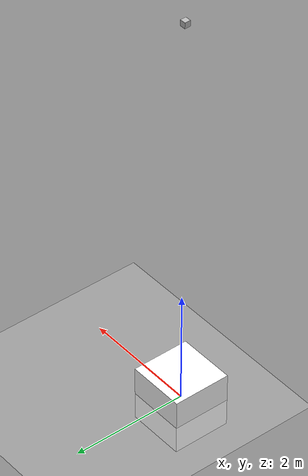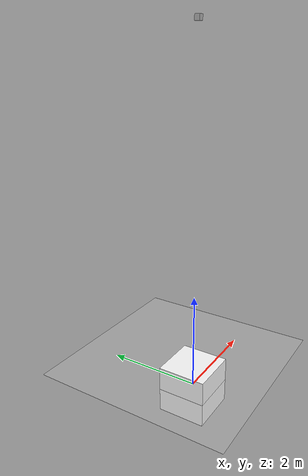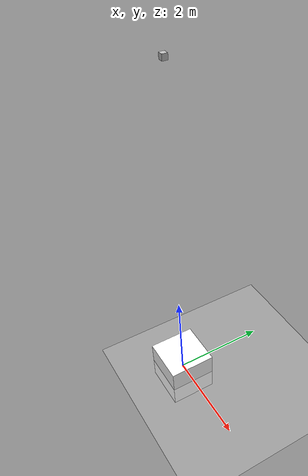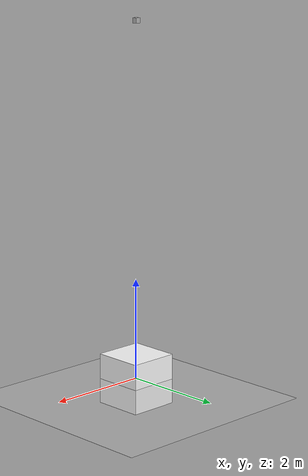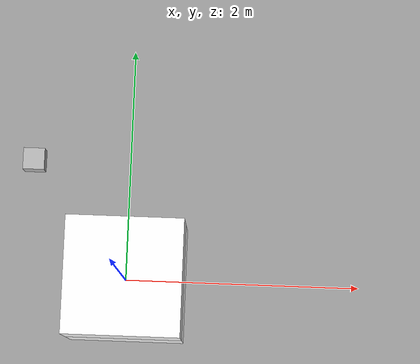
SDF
<?xml version="1.0" ?>
<sdf version='1.6'>
  <world name='hanabi'>
      <include>
        <uri>model://sun</uri>
      </include>
      <include>
        <uri>model://ground_plane</uri>
      </include>
      <include>
        <uri>model://aruco_visual_marker_0</uri>
        <name>AR_tag</name>
	<pose>0 0 0 0 0 0</pose>
      </include>

      <include>
        <uri>model://camera</uri>
        <name>drone_camera</name>
        <pose>0 0 7 0 0 0</pose>
      </include>
  </world>
</sdf>

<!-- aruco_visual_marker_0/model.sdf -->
<sdf version='1.5'>
  <model name='aruco_visual_marker_0'>

    <link name='marker'>
      <pose frame=''>0 0 0 0 0 0</pose>
      <visual name='visual'>
        <geometry>
          <box>
            <size>1 1 1</size>
          </box>
        </geometry>
        <material>
          <script>
            <uri>model://aruco_visual_marker_0/materials/scripts</uri>
            <uri>model://aruco_visual_marker_0/materials/textures</uri>
            <name>ArucoVisualMarker0/Marker</name>
          </script>
          <ambient>1 1 1 1</ambient>
          <diffuse>1 1 1 1</diffuse>
          <specular>0 0 0 1</specular>
          <emissive>1 1 1 0</emissive>
          <shader type='vertex'>
            <normal_map>__default__</normal_map>
          </shader>
        </material>
        <pose frame=''>0 0 0 0 -0 0</pose>
        <cast_shadows>1</cast_shadows>
        <transparency>0</transparency>
      </visual>
      <collision name='collision'>
        <laser_retro>0</laser_retro>
        <max_contacts>10</max_contacts>
        <pose frame=''>0 0 0 0 -0 0</pose>
        <geometry>
          <box>
            <size>1 1 1</size>
          </box>
        </geometry>
      </collision>
    </link>

    <static>1</static>
    <allow_auto_disable>1</allow_auto_disable>

  </model>
</sdf>

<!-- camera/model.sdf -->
<sdf version="1.5">
  <model name="camera">
    <pose>0 0 0.05 0 0 0</pose>
    <link name="link">
      <inertial>
        <mass>0.1</mass>
        <inertia>
          <ixx>0.000166667</ixx>
          <iyy>0.000166667</iyy>
          <izz>0.000166667</izz>
        </inertia>
      </inertial>
      <collision name="collision">
        <geometry>
          <box>
            <size>0.1 0.1 0.1</size>
          </box>
        </geometry>
      </collision>
      <visual name="visual">
        <geometry>
          <box>
            <size>0.1 0.1 0.1</size>
          </box>
        </geometry>
      </visual>
      <sensor name="camera" type="camera">
        <camera>
          <horizontal_fov>1.047</horizontal_fov>
          <image>
            <width>320</width>
            <height>240</height>
          </image>
          <clip>
            <near>0.1</near>
            <far>100</far>
          </clip>
        </camera>
        <always_on>1</always_on>
        <update_rate>30</update_rate>
        <visualize>true</visualize>
      </sensor>
    </link>
  </model>
</sdf>
